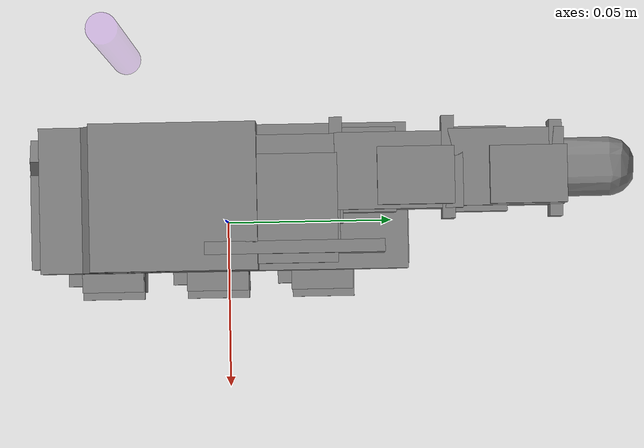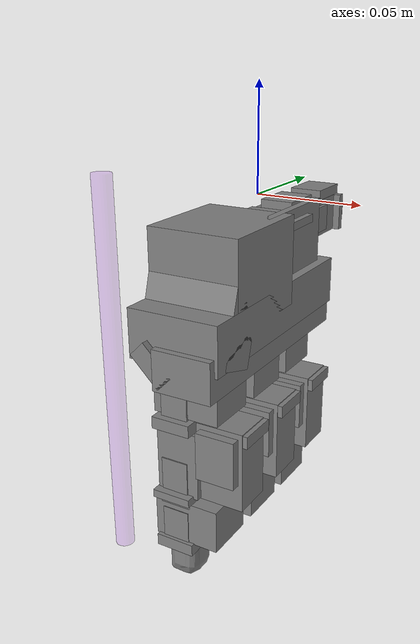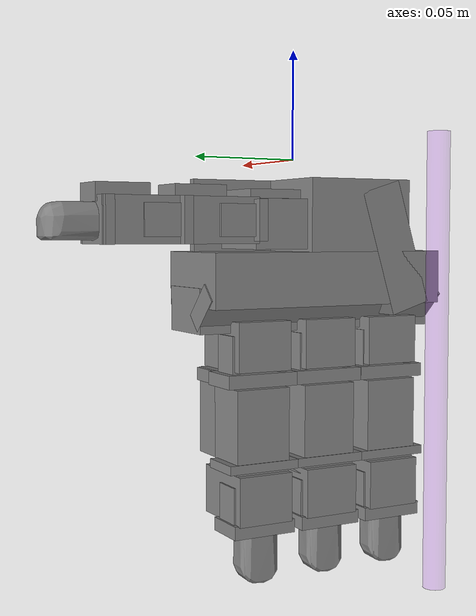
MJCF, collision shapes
<?xml version='1.0' encoding='utf-8'?>
<mujoco model="leap_rh">

  <asset>
    <material name="black" rgba="0.2 0.2 0.2 1" />

    <mesh name="palm" file="meshes/leap_hand/palm_right.stl" scale="0.75 0.75 0.75" />
    <mesh name="base" file="meshes/leap_hand/base.stl" scale="0.75 0.75 0.75" />
    <mesh name="proximal" file="meshes/leap_hand/proximal.stl" scale="0.75 0.75 0.75" />
    <mesh name="medial" file="meshes/leap_hand/medial.stl" scale="0.75 0.75 0.75" />
    <mesh name="distal" file="meshes/leap_hand/distal.stl" scale="0.75 0.75 0.75" />
    <mesh name="tip" file="meshes/leap_hand/tip.stl" scale="0.75 0.75 0.75" />
    <mesh name="thumb_base" file="meshes/leap_hand/thumb_base.stl" scale="0.75 0.75 0.75" />
    <mesh name="thumb_proximal" file="meshes/leap_hand/thumb_proximal.stl" scale="0.75 0.75 0.75" />
    <mesh name="thumb_distal" file="meshes/leap_hand/thumb_distal.stl" scale="0.75 0.75 0.75" />
    <mesh name="thumb_tip" file="meshes/leap_hand/thumb_tip.stl" scale="0.75 0.75 0.75" />
  </asset>

  <default>

   <geom solimp="0.9 0.95 0.001" solref="0.005 1" friction="0.8" />

    <position kp="3.0" />
    <joint damping="1.0" frictionloss="0.1" />

    <default class="visual">
      <geom group="1" type="mesh" contype="0" conaffinity="0" density="0" material="black" />
    </default>
    <default class="tip">
      <geom type="mesh" mesh="tip" friction="0.5" />
    </default>
    <default class="thumb_tip">
      <geom type="mesh" mesh="thumb_tip" friction="0.5" />
    </default>

    <default class="mcp">
      <joint pos="0.000000 0.000000 0.000000" axis="0 0 -1" limited="true" range="-0.314 2.23" damping="0.1" />
      <position ctrlrange="-0.314 2.23" />
    </default>
    <default class="rot">
      <joint pos="0.000000 0.000000 0.000000" axis="0 0 -1" limited="true" range="-1.047 1.047" damping="0.1" />
      <position ctrlrange="-1.047 1.047" />
    </default>
    <default class="pip">
      <joint pos="0.000000 0.000000 0.000000" axis="0 0 -1" limited="true" range="-0.506 1.885" damping="0.1" />
      <position ctrlrange="-0.506 1.885" />
    </default>
    <default class="dip">
      <joint pos="0.000000 0.000000 0.000000" axis="0 0 -1" limited="true" range="-0.366 2.042" damping="0.1" />
      <position ctrlrange="-0.366 2.042" />
    </default>
    <default class="thumb_cmc">
      <joint pos="0.000000 0.000000 0.000000" axis="0 0 -1" limited="true" range="-0.349 2.094" damping="0.1" />
      <position ctrlrange="-0.349 2.094" />
    </default>
    <default class="thumb_axl">
      <joint pos="0.000000 0.000000 0.000000" axis="0 0 -1" limited="true" range="-0.349 2.094" damping="0.1" />
      <position ctrlrange="-0.349 2.094" />
    </default>
    <default class="thumb_mcp">
      <joint pos="0.000000 0.000000 0.000000" axis="0 0 -1" limited="true" range="-0.47 2.443" damping="0.1" />
      <position ctrlrange="-0.47 2.443" />
    </default>
    <default class="thumb_ipl">
      <joint pos="0.000000 0.000000 0.000000" axis="0 0 -1" limited="true" range="-1.34 1.88" damping="0.1" />
      <position ctrlrange="-1.34 1.88" />
    </default>
  </default>

  <contact>

    <exclude body1="palm" body2="if_bs" />
    <exclude body1="palm" body2="mf_bs" />
    <exclude body1="palm" body2="rf_bs" />
    <exclude body1="palm" body2="th_mp" />

    <exclude body1="palm" body2="if_px" />
    <exclude body1="palm" body2="mf_px" />
    <exclude body1="palm" body2="rf_px" />
    <exclude body1="palm" body2="th_bs" />

    <exclude body1="palm" body2="if_md" />
    <exclude body1="palm" body2="mf_md" />
    <exclude body1="palm" body2="rf_md" />
    <exclude body1="palm" body2="th_px" />

    <exclude body1="if_bs" body2="mf_bs" />
    <exclude body1="if_bs" body2="rf_bs" />
    <exclude body1="mf_bs" body2="rf_bs" />

    <exclude body1="th_mp" body2="if_bs" />
    <exclude body1="th_mp" body2="mf_bs" />
    <exclude body1="th_mp" body2="rf_bs" />

  </contact>

  <actuator>

    <position name="if_mcp_act" joint="if_mcp" class="mcp" />
    <position name="if_rot_act" joint="if_rot" class="rot" />
    <position name="if_pip_act" joint="if_pip" class="pip" />
    <position name="if_dip_act" joint="if_dip" class="dip" />

    <position name="mf_mcp_act" joint="mf_mcp" class="mcp" />
    <position name="mf_rot_act" joint="mf_rot" class="rot" />
    <position name="mf_pip_act" joint="mf_pip" class="pip" />
    <position name="mf_dip_act" joint="mf_dip" class="dip" />

    <position name="rf_mcp_act" joint="rf_mcp" class="mcp" />
    <position name="rf_rot_act" joint="rf_rot" class="rot" />
    <position name="rf_pip_act" joint="rf_pip" class="pip" />
    <position name="rf_dip_act" joint="rf_dip" class="dip" />

    <position name="th_cmc_act" joint="th_cmc" class="thumb_cmc" />
    <position name="th_axl_act" joint="th_axl" class="thumb_axl" />
    <position name="th_mcp_act" joint="th_mcp" class="thumb_mcp" />
    <position name="th_ipl_act" joint="th_ipl" class="thumb_ipl" />
  </actuator>

  <sensor>
    <force name="force_ee" site="ft_frame" />
    <torque name="torque_ee" site="ft_frame" />

    <jointpos name="if_mcp_sensor" joint="if_mcp" />
    <jointpos name="if_rot_sensor" joint="if_rot" />
    <jointpos name="if_pip_sensor" joint="if_pip" />
    <jointpos name="if_dip_sensor" joint="if_dip" />

    <jointpos name="mf_mcp_sensor" joint="mf_mcp" />
    <jointpos name="mf_rot_sensor" joint="mf_rot" />
    <jointpos name="mf_pip_sensor" joint="mf_pip" />
    <jointpos name="mf_dip_sensor" joint="mf_dip" />

    <jointpos name="rf_mcp_sensor" joint="rf_mcp" />
    <jointpos name="rf_rot_sensor" joint="rf_rot" />
    <jointpos name="rf_pip_sensor" joint="rf_pip" />
    <jointpos name="rf_dip_sensor" joint="rf_dip" />

    <jointpos name="th_cmc_sensor" joint="th_cmc" />
    <jointpos name="th_axl_sensor" joint="th_axl" />
    <jointpos name="th_mcp_sensor" joint="th_mcp" />
    <jointpos name="th_ipl_sensor" joint="th_ipl" />
  </sensor>

  <worldbody>
    <body name="palm" pos="0.000000 0.022500 -0.090000" quat="0.7071068 0 0.7071068 0">

      <site name="ft_frame" pos="0.000000 -0.045000 0.000000" size="0.01 0.01 0.01" rgba="1 0 0 0" type="sphere" group="1" />
      <site name="grip_site" pos="0.000000 -0.060000 0.000000" size="0.01 0.01 0.01" rgba="1 0 0 0" type="sphere" group="1" />
      <site name="grip_site_cylinder" pos="0.000000 -0.060000 -0.060000" quat="0.707107 0 0.707107 0" size="0.005 .1" rgba=".627 .125 .941 .2" type="cylinder" group="1" />
      <inertial pos="-0.049542 -0.042914 -0.010227" quat="0.565586 0.427629 -0.574956 0.408254" mass="0.237" diaginertia="0.000407345 0.000304759 0.000180736" />
      <geom name="palm_visual" pos="-0.015000 0.019312 -0.026025" quat="1 0 0 0" class="visual" mesh="palm" />
      <geom name="palm_collision_1" size="0.011 0.013 0.017" pos="-0.006750 0.006000 -0.008250" type="box" />
      <geom name="palm_collision_2" size="0.011 0.013 0.017" pos="-0.006750 -0.027750 -0.008250" type="box" />
      <geom name="palm_collision_3" size="0.011 0.013 0.017" pos="-0.006750 -0.061500 -0.008250" type="box" />
      <geom name="palm_collision_4" size="0.029 0.01 0.023" pos="-0.049500 -0.058500 -0.008625" quat="0.989016 0 0 -0.147806" type="box" />
      <geom name="palm_collision_5" size="0.01 0.06 0.015" pos="-0.022500 -0.026250 -0.002250" type="box" />
      <geom name="palm_collision_6" size="0.005 0.06 0.01" pos="-0.024000 -0.026250 -0.018000" quat="0.923956 0 0.382499 0" type="box" />
      <geom name="palm_collision_7" size="0.012 0.058 0.023" pos="-0.036000 -0.024750 -0.008625" type="box" />
      <geom name="palm_collision_8" size="0.022 0.026 0.023" pos="-0.058500 -0.039750 -0.008625" type="box" />
      <geom name="palm_collision_9" size="0.002 0.018 0.017" pos="-0.073500 -0.006750 -0.004500" type="box" />
      <geom name="palm_collision_10" size="0.022 0.028 0.002" pos="-0.058500 -0.002250 0.007500" type="box" />

      <body name="if_bs" pos="-0.005250 0.017250 -0.014025" quat="0.500003 0.5 0.5 -0.499997">
        <inertial pos="-0.022516 0.033882 0.016359" quat="0.388092 0.677951 -0.247713 0.573067" mass="0.044" diaginertia="1.74972e-05 1.61504e-05 7.21342e-06" />
        <joint name="if_mcp" class="mcp" />
        <geom name="if_bs_visual" pos="0.006300 0.005775 0.010988" quat="1 0 0 0" class="visual" mesh="base" />
        <geom name="if_bs_collision_1" size="0.01 0.003 0.017" pos="0.000000 0.013500 0.011025" type="box" />
        <geom name="if_bs_collision_2" size="0.014 0.02 0.01" pos="-0.020250 0.031500 0.011250" type="box" />
        <geom name="if_bs_collision_3" size="0.017 0.003 0.01" pos="-0.019650 0.015000 0.010950" type="box" />
        <geom name="if_bs_collision_4" size="0.01 0.012 0.004" pos="-0.022125 0.026250 0.021750" type="box" />
        <geom name="if_bs_collision_5" size="0.007 0.01 0.002" pos="0.000000 0.003750 0.022500" type="box" />
        <geom name="if_bs_collision_6" size="0.007 0.01 0.002" pos="0.000000 0.003750 -0.000750" type="box" />

        <body name="if_px" pos="-0.009150 0.028575 0.010875" quat="0.500003 -0.5 -0.499997 0.5">
          <inertial pos="0.0075 -0.0002 -0.011" quat="0 0.707107 0 0.707107" mass="0.032" diaginertia="4.8853e-06 4.3733e-06 3.0933e-06" />
          <joint name="if_rot" class="rot" />
          <geom name="if_px_visual" pos="0.007200 0.000150 0.000525" quat="0.500003 -0.5 -0.5 -0.499997" class="visual" mesh="proximal" />
          <geom name="if_px_collision" size="0.017 0.013 0.011" pos="0.005625 -0.000150 -0.008250" type="box" />

          <body name="if_md" pos="0.011250 0.010725 -0.009750" quat="0.500003 0.5 -0.5 0.499997">
            <inertial pos="0.0054215 -0.029148 0.015" quat="0.687228 0.687228 0.166487 0.166487" mass="0.037" diaginertia="8.28004e-06 8.1598e-06 5.39516e-06" />
            <joint name="if_pip" class="pip" />
            <geom name="if_md_visual" pos="0.015825 -0.006300 0.007275" quat="2.67949e-08 -1 0 0" class="visual" mesh="medial" />
            <geom name="if_md_collision_1" size="0.008 0.003 0.013" pos="0.000000 -0.015000 0.011250" type="box" />
            <geom name="if_md_collision_2" size="0.01 0.002 0.017" pos="0.000000 -0.012000 0.011250" type="box" />
            <geom name="if_md_collision_3" size="0.007 0.01 0.002" pos="0.000000 -0.003375 0.022500" type="box" />
            <geom name="if_md_collision_4" size="0.007 0.01 0.002" pos="0.000000 -0.003375 0.000000" type="box" />
            <geom name="if_md_collision_5" size="0.017 0.011 0.013" pos="0.005625 -0.026250 0.011250" type="box" />

            <body name="if_ds" pos="0.000000 -0.027075 0.000150">
              <inertial pos="-0.0008794 -0.027019 0.014594" quat="0.702905 0.710643 -0.0212937 -0.0214203" mass="0.016" diaginertia="3.71863e-06 3.02396e-06 1.6518e-06" />
              <joint name="if_dip" class="dip" />
              <geom name="if_ds_visual" pos="0.009900 -0.004575 0.010800" quat="2.67949e-08 1 0 0" class="visual" mesh="distal" />
              <geom name="if_ds_collision_1" size="0.01 0.003 0.015" pos="0.000000 -0.012750 0.011250" type="box" />
              <geom name="if_ds_collision_2" size="0.007 0.011 0.002" pos="0.000000 -0.004500 0.022500" type="box" />
              <geom name="if_ds_collision_3" size="0.007 0.011 0.002" pos="0.000000 -0.004500 -0.000750" type="box" />

              <geom name="if_tip" class="tip" />
            </body>

          </body>
        </body>
      </body>

      <body name="mf_bs" pos="-0.005325 -0.016800 -0.014025" quat="0.500003 0.5 0.5 -0.499997">
        <inertial pos="-0.022516 0.033882 0.016359" quat="0.388092 0.677951 -0.247713 0.573067" mass="0.044" diaginertia="1.74972e-05 1.61504e-05 7.21342e-06" />
        <joint name="mf_mcp" class="mcp" />
        <geom name="mf_bs_visual" pos="0.006300 0.005775 0.010988" quat="1 0 0 0" class="visual" mesh="base" />
        <geom name="mf_bs_collision_1" size="0.01 0.003 0.017" pos="0.000000 0.013500 0.011025" type="box" />
        <geom name="mf_bs_collision_2" size="0.014 0.02 0.01" pos="-0.020250 0.031500 0.011250" type="box" />
        <geom name="mf_bs_collision_3" size="0.017 0.003 0.01" pos="-0.019650 0.015000 0.010950" type="box" />
        <geom name="mf_bs_collision_4" size="0.01 0.012 0.004" pos="-0.022125 0.026250 0.021750" type="box" />
        <geom name="mf_bs_collision_5" size="0.007 0.01 0.002" pos="0.000000 0.003750 0.022500" type="box" />
        <geom name="mf_bs_collision_6" size="0.007 0.01 0.002" pos="0.000000 0.003750 -0.000750" type="box" />

        <body name="mf_px" pos="-0.009150 0.028575 0.010875" quat="0.500003 -0.5 -0.499997 0.5">
          <inertial pos="0.0075 -0.0002 -0.011" quat="0 0.707107 0 0.707107" mass="0.032" diaginertia="4.8853e-06 4.3733e-06 3.0933e-06" />
          <joint name="mf_rot" class="rot" />
          <geom name="mf_px_visual" pos="0.007200 0.000225 0.000525" quat="0.500003 -0.5 -0.5 -0.499997" class="visual" mesh="proximal" />
          <geom name="mf_px_collision" size="0.017 0.013 0.011" pos="0.005625 -0.000150 -0.008250" type="box" />

          <body name="mf_md" pos="0.011250 0.010725 -0.009750" quat="0.500003 0.5 -0.5 0.499997">
            <inertial pos="0.0054215 -0.029148 0.015" quat="0.687228 0.687228 0.166487 0.166487" mass="0.037" diaginertia="8.28004e-06 8.1598e-06 5.39516e-06" />
            <joint name="mf_pip" class="pip" />
            <geom name="mf_md_visual" pos="0.015825 -0.006300 0.007275" quat="1.32679e-06 -1 0 0" class="visual" mesh="medial" />
            <geom name="mf_md_collision_1" size="0.008 0.003 0.013" pos="0.000000 -0.015000 0.011250" type="box" />
            <geom name="mf_md_collision_2" size="0.01 0.002 0.017" pos="0.000000 -0.012000 0.011250" type="box" />
            <geom name="mf_md_collision_3" size="0.007 0.01 0.002" pos="0.000000 -0.003375 0.022500" type="box" />
            <geom name="mf_md_collision_4" size="0.007 0.01 0.002" pos="0.000000 -0.003375 0.000000" type="box" />
            <geom name="mf_md_collision_5" size="0.017 0.011 0.013" pos="0.005625 -0.026250 0.011250" type="box" />

            <body name="mf_ds" pos="0.000000 -0.027075 0.000150">
              <inertial pos="-0.0008794 -0.027019 0.014594" quat="0.702905 0.710643 -0.0212937 -0.0214203" mass="0.016" diaginertia="3.71863e-06 3.02396e-06 1.6518e-06" />
              <joint name="mf_dip" class="dip" />
              <geom name="mf_ds_visual" pos="0.009900 -0.004575 0.010875" quat="1.32679e-06 1 0 0" class="visual" mesh="distal" />
              <geom name="mf_ds_collision_1" size="0.01 0.003 0.015" pos="0.000000 -0.012750 0.011250" type="box" />
              <geom name="mf_ds_collision_2" size="0.007 0.011 0.002" pos="0.000000 -0.004500 0.022500" type="box" />
              <geom name="mf_ds_collision_3" size="0.007 0.011 0.002" pos="0.000000 -0.004500 -0.000750" type="box" />

              <geom name="mf_tip" class="tip" />
            </body>

          </body>
        </body>
      </body>

      <body name="rf_bs" pos="-0.005318 -0.050850 -0.014025" quat="0.500003 0.5 0.5 -0.499997">
        <inertial pos="-0.022516 0.033882 0.016359" quat="0.388092 0.677951 -0.247713 0.573067" mass="0.044" diaginertia="1.74972e-05 1.61504e-05 7.21342e-06" />
        <joint name="rf_mcp" class="mcp" />
        <geom name="rf_bs_visual" pos="0.006300 0.005775 0.010988" quat="1 0 0 0" class="visual" mesh="base" />
        <geom name="rf_bs_collision_1" size="0.01 0.003 0.017" pos="0.000000 0.013500 0.011025" type="box" />
        <geom name="rf_bs_collision_2" size="0.014 0.02 0.01" pos="-0.020250 0.031500 0.011250" type="box" />
        <geom name="rf_bs_collision_3" size="0.017 0.003 0.01" pos="-0.019650 0.015000 0.010950" type="box" />
        <geom name="rf_bs_collision_4" size="0.01 0.012 0.004" pos="-0.022125 0.026250 0.021750" type="box" />
        <geom name="rf_bs_collision_5" size="0.007 0.01 0.002" pos="0.000000 0.003750 0.022500" type="box" />
        <geom name="rf_bs_collision_6" size="0.007 0.01 0.002" pos="0.000000 0.003750 -0.000750" type="box" />

        <body name="rf_px" pos="-0.009150 0.028575 0.010875" quat="0.500003 -0.5 -0.499997 0.5">
          <inertial pos="0.0075 -0.0002 -0.011" quat="0 0.707107 0 0.707107" mass="0.032" diaginertia="4.8853e-06 4.3733e-06 3.0933e-06" />
          <joint name="rf_rot" class="rot" />
          <geom name="rf_px_visual" pos="0.007200 0.000225 0.000525" quat="0.500003 -0.5 -0.5 -0.499997" class="visual" mesh="proximal" />
          <geom name="rf_px_collision" size="0.017 0.013 0.011" pos="0.005625 -0.000150 -0.008250" type="box" />

          <body name="rf_md" pos="0.011250 0.010725 -0.009750" quat="0.500003 0.5 -0.5 0.499997">
            <inertial pos="0.0054215 -0.029148 0.015" quat="0.687228 0.687228 0.166487 0.166487" mass="0.037" diaginertia="8.28004e-06 8.1598e-06 5.39516e-06" />
            <joint name="rf_pip" class="pip" />
            <geom name="rf_md_visual" pos="0.015825 -0.006300 0.007275" quat="1.32679e-06 -1 0 0" class="visual" mesh="medial" />
            <geom name="rf_md_collision_1" size="0.008 0.003 0.013" pos="0.000000 -0.015000 0.011250" type="box" />
            <geom name="rf_md_collision_2" size="0.01 0.002 0.017" pos="0.000000 -0.012000 0.011250" type="box" />
            <geom name="rf_md_collision_3" size="0.007 0.01 0.002" pos="0.000000 -0.003375 0.022500" type="box" />
            <geom name="rf_md_collision_4" size="0.007 0.01 0.002" pos="0.000000 -0.003375 0.000000" type="box" />
            <geom name="rf_md_collision_5" size="0.017 0.011 0.013" pos="0.005625 -0.026250 0.011250" type="box" />

            <body name="rf_ds" pos="0.000000 -0.027067 0.000150">
              <inertial pos="-0.0008794 -0.027019 0.014594" quat="0.702905 0.710643 -0.0212937 -0.0214203" mass="0.016" diaginertia="3.71863e-06 3.02396e-06 1.6518e-06" />
              <joint name="rf_dip" class="dip" />
              <geom name="rf_ds_visual" pos="0.009900 -0.004575 0.010875" quat="1.32679e-06 1 0 0" class="visual" mesh="distal" />
              <geom name="rf_ds_collision_1" size="0.01 0.003 0.015" pos="0.000000 -0.012750 0.011250" type="box" />
              <geom name="rf_ds_collision_2" size="0.007 0.011 0.002" pos="0.000000 -0.004500 0.022500" type="box" />
              <geom name="rf_ds_collision_3" size="0.007 0.011 0.002" pos="0.000000 -0.004500 -0.000750" type="box" />

              <geom name="rf_tip" class="tip" />
            </body>

          </body>
        </body>
      </body>

      <body name="th_mp" pos="-0.051975 -0.000900 -0.016200" quat="0.707109 0 0.707105 0">
        <inertial pos="0.0075 -0.0002 -0.011" quat="0 0.707107 0 0.707107" mass="0.032" diaginertia="4.8853e-06 4.3733e-06 3.0933e-06" />
        <joint name="th_cmc" class="thumb_cmc" />
        <geom name="th_mp_visual" pos="-0.003975 0.000225 0.000585" quat="0.500003 -0.5 -0.5 -0.499997" class="visual" mesh="proximal" />
        <geom name="th_mp_collision" size="0.017 0.013 0.011" pos="-0.005625 -0.000150 -0.008250" type="box" />

        <body name="th_bs" pos="0.000000 0.010725 -0.009750" quat="0.500003 0.5 -0.5 0.499997">
          <inertial pos="0 0 -0.0070806" quat="0.707107 0.707107 0 0" mass="0.003" diaginertia="6.1932e-07 5.351e-07 2.1516e-07" />
          <joint name="th_axl" class="thumb_axl" />
          <geom name="th_bs_visual" pos="0.008970 0.000000 -0.011850" quat="0.707109 0.707105 0 0" class="visual" mesh="thumb_base" />
          <geom name="th_bs_collision_1" size="0.009 0.0165 0.002" pos="0.000000 0.000000 -0.001125" type="box" />
          <geom name="th_bs_collision_2" size="0.007 0.002 0.01" pos="0.000000 -0.011250 -0.009750" type="box" />
          <geom name="th_bs_collision_3" size="0.007 0.002 0.01" pos="0.000000 0.011250 -0.009750" type="box" />

          <body name="th_px" pos="0.000000 0.010875 -0.012750" quat="0.707109 -0.707105 0 0">
            <inertial pos="-0.0020593 0.015912 -0.013733" quat="0.698518 0.697382 -0.104933 0.121324" mass="0.038" diaginertia="9.87104e-06 9.32653e-06 4.36203e-06" />
            <joint name="th_mcp" class="thumb_mcp" />
            <geom name="th_px_visual" pos="0.032925 0.043425 -0.006450" quat="1 0 0 0" class="visual" mesh="thumb_proximal" />
            <geom name="th_px_collision_1" size="0.01 0.02 0.012" pos="0.000000 0.007875 -0.010500" type="box" />
            <geom name="th_px_collision_2" size="0.01 0.002 0.016" pos="0.000000 0.023250 -0.011250" type="box" />
            <geom name="th_px_collision_3" size="0.007 0.01 0.002" pos="0.000000 0.031500 0.000750" type="box" />
            <geom name="th_px_collision_4" size="0.007 0.01 0.002" pos="0.000000 0.031500 -0.021750" type="box" />
            <geom name="th_px_collision_5" size="0.005 0.012 0.009" pos="-0.010125 0.013125 -0.008742" type="box" />

            <body name="th_ds" pos="0.000000 0.034950 0.000150" quat="1.32679e-06 0 0 1">
              <inertial pos="0.00096191 -0.024203 -0.014419" quat="0.35287 0.311272 -0.632839 0.614904" mass="0.049" diaginertia="2.08591e-05 2.0402e-05 4.71335e-06" />
              <joint name="th_ipl" class="thumb_ipl" />
              <geom name="th_ds_visual" pos="0.046875 0.058800 0.036675" quat="1 0 0 0" class="visual" mesh="thumb_distal" />
              <geom name="th_ds_collision_1" size="0.01 0.018 0.012" pos="0.000000 -0.006375 -0.011250" type="box" />
              <geom name="th_ds_collision_2" size="0.01 0.002 0.015" pos="0.000000 -0.021750 -0.010500" type="box" />
              <geom name="th_ds_collision_3" size="0.004 0.012 0.009" pos="0.011250 -0.013125 -0.008625" type="box" />

              <geom name="th_tip" class="thumb_tip" />
            </body>

          </body>
        </body>
      </body>

    </body>
  </worldbody>
</mujoco>
